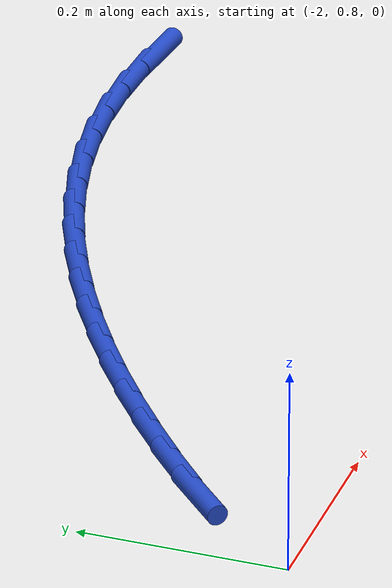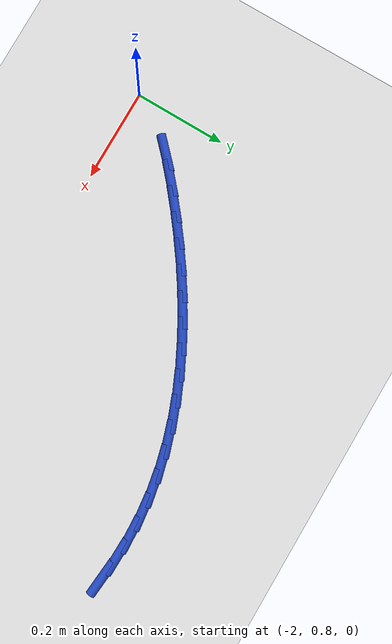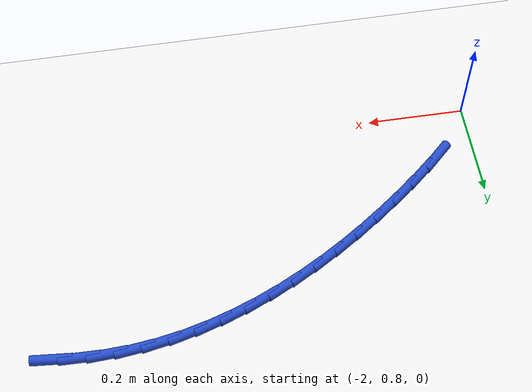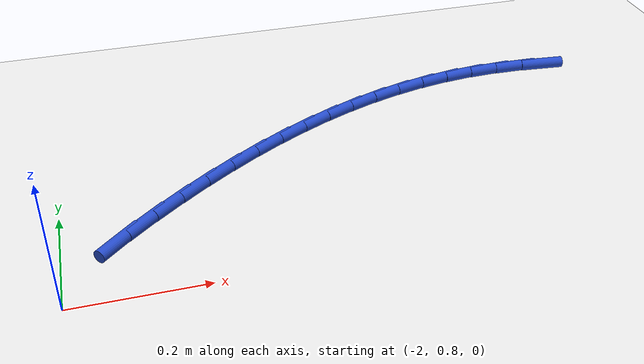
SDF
<sdf version="1.6">
 <world name="default">
  <model name="ground_plane">
   <static>1</static>
   <link name="link">
    <collision name="collision">
     <geometry><plane><normal>0 0 1</normal><size>100 100</size></plane></geometry>
     <surface><friction><ode><mu>100</mu><mu2>50</mu2></ode></friction></surface>
    </collision>
    <visual name="visual">
     <cast_shadows>0</cast_shadows>
     <geometry><plane><normal>0 0 1</normal><size>100 100</size></plane></geometry>
     <material>
      <script><uri>file://media/materials/scripts/gazebo.material</uri><name>Gazebo/WhiteGlow</name></script>
     </material>
    </visual>
   </link>
  </model>
  <model name="line">
   <link name="link_34">
    <pose>-1.1041667771261514 1.2404503931768915 0.01 0 1.57 -0.08950409748120725</pose>
    <collision name="collision">
     <geometry><cylinder><radius>0.01</radius><length>0.08</length></cylinder></geometry>
    </collision>
    <visual name="visual">
     <material>
      <script><name>Gazebo/Blue</name><uri>file://media/materials/scripts/gazebo.material</uri></script>
     </material>
     <geometry><cylinder><radius>0.01</radius><length>0.08</length></cylinder></geometry>
    </visual>
   </link>
   <link name="link_35">
    <pose>-1.156194443766787 1.2451195573866296 0.01 0 1.57 -0.023386335153758573</pose>
    <collision name="collision">
     <geometry><cylinder><radius>0.01</radius><length>0.08</length></cylinder></geometry>
    </collision>
    <visual name="visual">
     <material>
      <script><name>Gazebo/Blue</name><uri>file://media/materials/scripts/gazebo.material</uri></script>
     </material>
     <geometry><cylinder><radius>0.01</radius><length>0.08</length></cylinder></geometry>
    </visual>
   </link>
   <link name="link_36">
    <pose>-1.2080616920745755 1.2463327634229437 0.01 0 1.57 0.04794509406988395</pose>
    <collision name="collision">
     <geometry><cylinder><radius>0.01</radius><length>0.08</length></cylinder></geometry>
    </collision>
    <visual name="visual">
     <material>
      <script><name>Gazebo/Blue</name><uri>file://media/materials/scripts/gazebo.material</uri></script>
     </material>
     <geometry><cylinder><radius>0.01</radius><length>0.08</length></cylinder></geometry>
    </visual>
   </link>
   <link name="link_37">
    <pose>-1.2595979207297625 1.243859959030062 0.01 0 1.57 0.12009842457078553</pose>
    <collision name="collision">
     <geometry><cylinder><radius>0.01</radius><length>0.08</length></cylinder></geometry>
    </collision>
    <visual name="visual">
     <material>
      <script><name>Gazebo/Blue</name><uri>file://media/materials/scripts/gazebo.material</uri></script>
     </material>
     <geometry><cylinder><radius>0.01</radius><length>0.08</length></cylinder></geometry>
    </visual>
   </link>
   <link name="link_38">
    <pose>-1.310701085496671 1.2376928702951726 0.01 0 1.57 0.18867450825872953</pose>
    <collision name="collision">
     <geometry><cylinder><radius>0.01</radius><length>0.08</length></cylinder></geometry>
    </collision>
    <visual name="visual">
     <material>
      <script><name>Gazebo/Blue</name><uri>file://media/materials/scripts/gazebo.material</uri></script>
     </material>
     <geometry><cylinder><radius>0.01</radius><length>0.08</length></cylinder></geometry>
    </visual>
   </link>
   <link name="link_39">
    <pose>-1.3613315771763312 1.2280251971666563 0.01 0 1.57 0.253168925779506</pose>
    <collision name="collision">
     <geometry><cylinder><radius>0.01</radius><length>0.08</length></cylinder></geometry>
    </collision>
    <visual name="visual">
     <material>
      <script><name>Gazebo/Blue</name><uri>file://media/materials/scripts/gazebo.material</uri></script>
     </material>
     <geometry><cylinder><radius>0.01</radius><length>0.08</length></cylinder></geometry>
    </visual>
   </link>
   <link name="link_40">
    <pose>-1.411452066182845 1.2150580140140304 0.01 0 1.57 0.31339865597737976</pose>
    <collision name="collision">
     <geometry><cylinder><radius>0.01</radius><length>0.08</length></cylinder></geometry>
    </collision>
    <visual name="visual">
     <material>
      <script><name>Gazebo/Blue</name><uri>file://media/materials/scripts/gazebo.material</uri></script>
     </material>
     <geometry><cylinder><radius>0.01</radius><length>0.08</length></cylinder></geometry>
    </visual>
   </link>
   <link name="link_41">
    <pose>-1.4610252229303158 1.1989923952068111 0.01 0 1.57 0.3693281852339817</pose>
    <collision name="collision">
     <geometry><cylinder><radius>0.01</radius><length>0.08</length></cylinder></geometry>
    </collision>
    <visual name="visual">
     <material>
      <script><name>Gazebo/Blue</name><uri>file://media/materials/scripts/gazebo.material</uri></script>
     </material>
     <geometry><cylinder><radius>0.01</radius><length>0.08</length></cylinder></geometry>
    </visual>
   </link>
   <link name="link_42">
    <pose>-1.510013717832845 1.1800294151145159 0.01 0 1.57 0.4210357594181196</pose>
    <collision name="collision">
     <geometry><cylinder><radius>0.01</radius><length>0.08</length></cylinder></geometry>
    </collision>
    <visual name="visual">
     <material>
      <script><name>Gazebo/Blue</name><uri>file://media/materials/scripts/gazebo.material</uri></script>
     </material>
     <geometry><cylinder><radius>0.01</radius><length>0.08</length></cylinder></geometry>
    </visual>
   </link>
   <link name="link_43">
    <pose>-1.5583802213045352 1.1583701481066606 0.01 0 1.57 0.4686804549283859</pose>
    <collision name="collision">
     <geometry><cylinder><radius>0.01</radius><length>0.08</length></cylinder></geometry>
    </collision>
    <visual name="visual">
     <material>
      <script><name>Gazebo/Blue</name><uri>file://media/materials/scripts/gazebo.material</uri></script>
     </material>
     <geometry><cylinder><radius>0.01</radius><length>0.08</length></cylinder></geometry>
    </visual>
   </link>
   <link name="link_44">
    <pose>-1.6060874037594892 1.1342156685527627 0.01 0 1.57 0.5124733792224611</pose>
    <collision name="collision">
     <geometry><cylinder><radius>0.01</radius><length>0.08</length></cylinder></geometry>
    </collision>
    <visual name="visual">
     <material>
      <script><name>Gazebo/Blue</name><uri>file://media/materials/scripts/gazebo.material</uri></script>
     </material>
     <geometry><cylinder><radius>0.01</radius><length>0.08</length></cylinder></geometry>
    </visual>
   </link>
   <link name="link_45">
    <pose>-1.6530979356118094 1.1077670508223385 0.01 0 1.57 0.5526544014861036</pose>
    <collision name="collision">
     <geometry><cylinder><radius>0.01</radius><length>0.08</length></cylinder></geometry>
    </collision>
    <visual name="visual">
     <material>
      <script><name>Gazebo/Blue</name><uri>file://media/materials/scripts/gazebo.material</uri></script>
     </material>
     <geometry><cylinder><radius>0.01</radius><length>0.08</length></cylinder></geometry>
    </visual>
   </link>
   <link name="link_46">
    <pose>-1.6993744872755978 1.0792253692849045 0.01 0 1.57 0.5894745075956613</pose>
    <collision name="collision">
     <geometry><cylinder><radius>0.01</radius><length>0.08</length></cylinder></geometry>
    </collision>
    <visual name="visual">
     <material>
      <script><name>Gazebo/Blue</name><uri>file://media/materials/scripts/gazebo.material</uri></script>
     </material>
     <geometry><cylinder><radius>0.01</radius><length>0.08</length></cylinder></geometry>
    </visual>
   </link>
   <link name="link_47">
    <pose>-1.7448797291649565 1.0487916983099779 0.01 0 1.57 0.6231831463204608</pose>
    <collision name="collision">
     <geometry><cylinder><radius>0.01</radius><length>0.08</length></cylinder></geometry>
    </collision>
    <visual name="visual">
     <material>
      <script><name>Gazebo/Blue</name><uri>file://media/materials/scripts/gazebo.material</uri></script>
     </material>
     <geometry><cylinder><radius>0.01</radius><length>0.08</length></cylinder></geometry>
    </visual>
   </link>
   <link name="link_48">
    <pose>-1.789576331693989 1.016667112267075 0.01 0 1.57 0.6540196357630114</pose>
    <collision name="collision">
     <geometry><cylinder><radius>0.01</radius><length>0.08</length></cylinder></geometry>
    </collision>
    <visual name="visual">
     <material>
      <script><name>Gazebo/Blue</name><uri>file://media/materials/scripts/gazebo.material</uri></script>
     </material>
     <geometry><cylinder><radius>0.01</radius><length>0.08</length></cylinder></geometry>
    </visual>
   </link>
   <link name="link_49">
    <pose>-1.8334269652767965 0.9830526855257128 0.01 0 1.57 0.6827512179668036</pose>
    <collision name="collision">
     <geometry><cylinder><radius>0.01</radius><length>0.08</length></cylinder></geometry>
    </collision>
    <visual name="visual">
     <material>
      <script><name>Gazebo/Blue</name><uri>file://media/materials/scripts/gazebo.material</uri></script>
     </material>
     <geometry><cylinder><radius>0.01</radius><length>0.08</length></cylinder></geometry>
    </visual>
   </link>
   <link name="link_50">
    <pose>-1.8763650993271739 0.9481344561324505 0.01 0 1.57 0.715752641495144</pose>
    <collision name="collision">
     <geometry><cylinder><radius>0.01</radius><length>0.08</length></cylinder></geometry>
    </collision>
    <visual name="visual">
     <material>
      <script><name>Gazebo/Blue</name><uri>file://media/materials/scripts/gazebo.material</uri></script>
     </material>
     <geometry><cylinder><radius>0.01</radius><length>0.08</length></cylinder></geometry>
    </visual>
   </link>
   <link name="link_51">
    <pose>-1.9179985634133236 0.9119307820600733 0.01 0 1.57 0.7575008575013443</pose>
    <collision name="collision">
     <geometry><cylinder><radius>0.01</radius><length>0.08</length></cylinder></geometry>
    </collision>
    <visual name="visual">
     <material>
      <script><name>Gazebo/Blue</name><uri>file://media/materials/scripts/gazebo.material</uri></script>
     </material>
     <geometry><cylinder><radius>0.01</radius><length>0.08</length></cylinder></geometry>
    </visual>
   </link>
  </model>
 </world>
</sdf>
